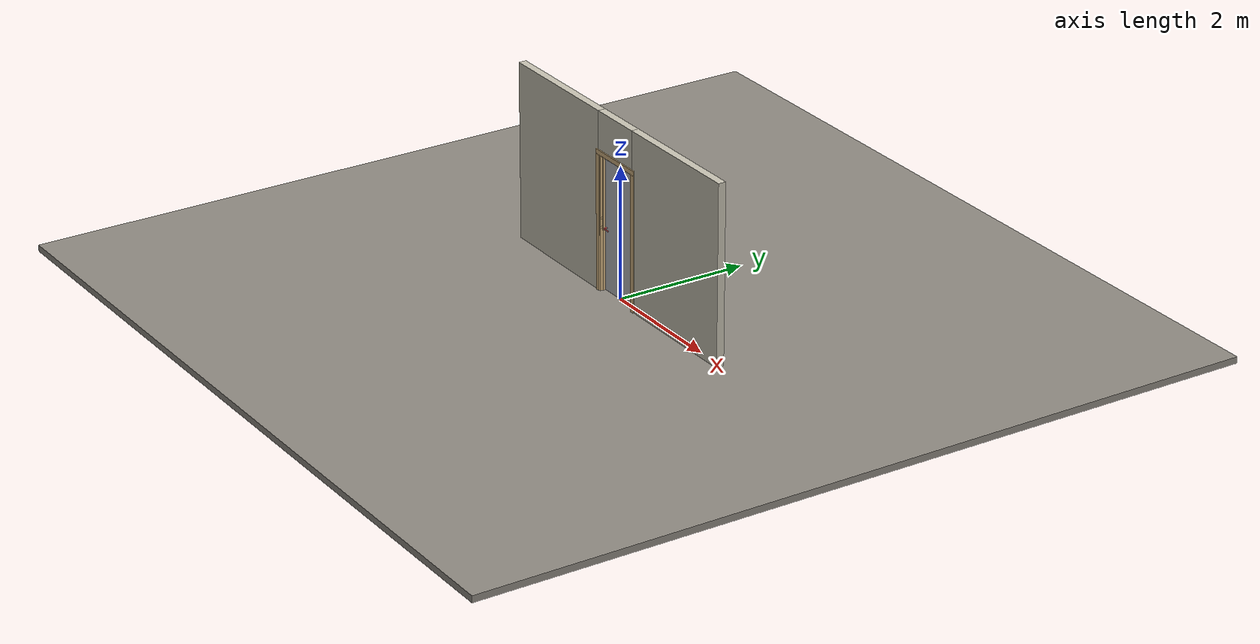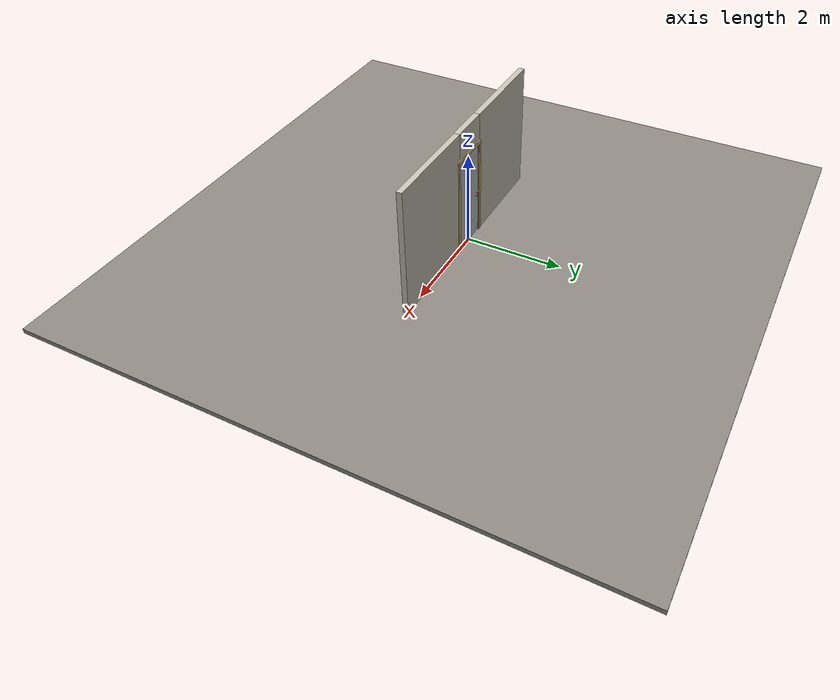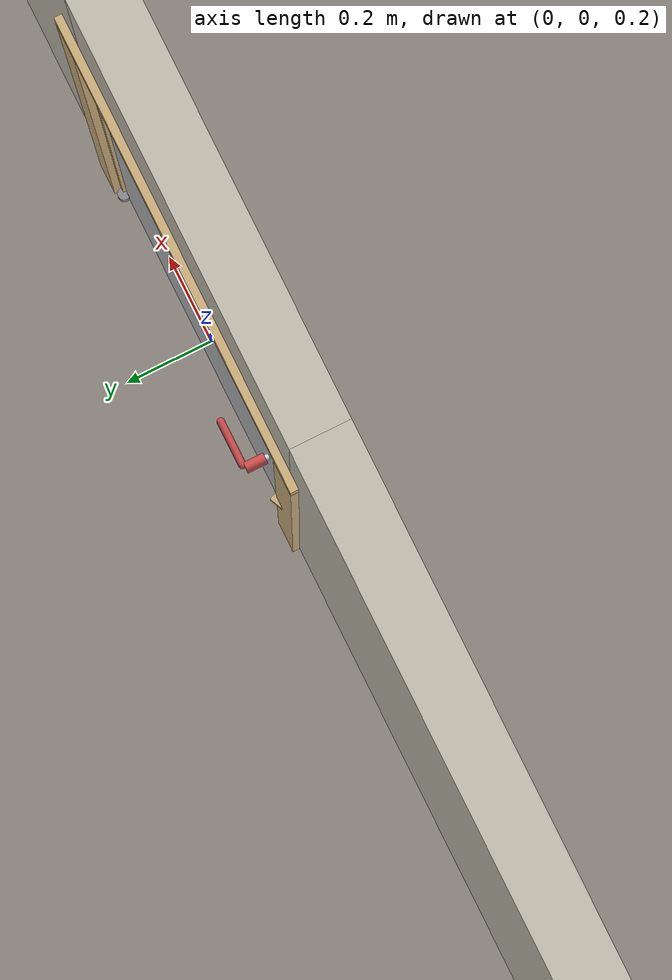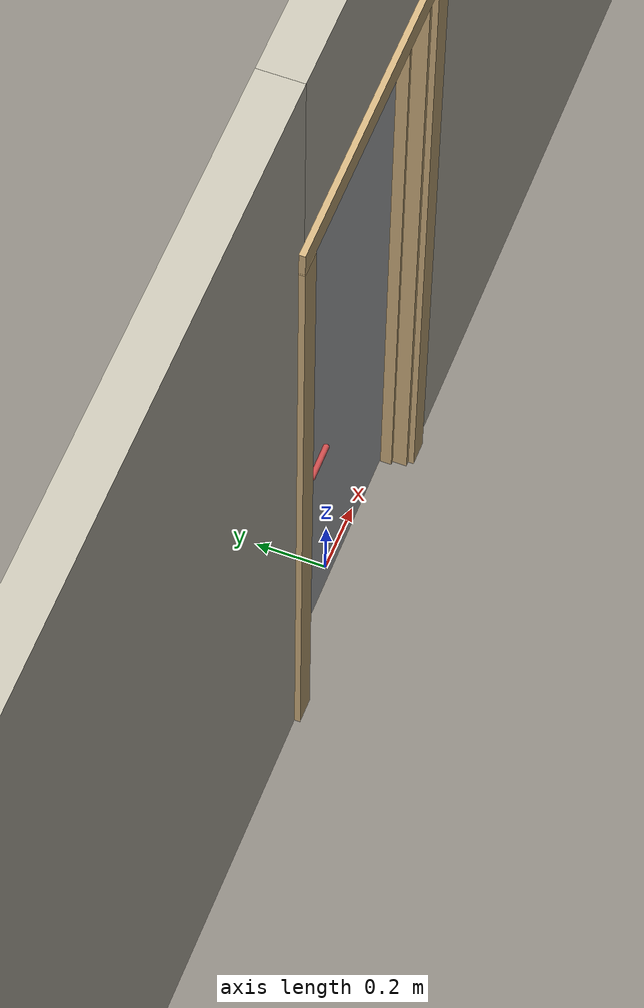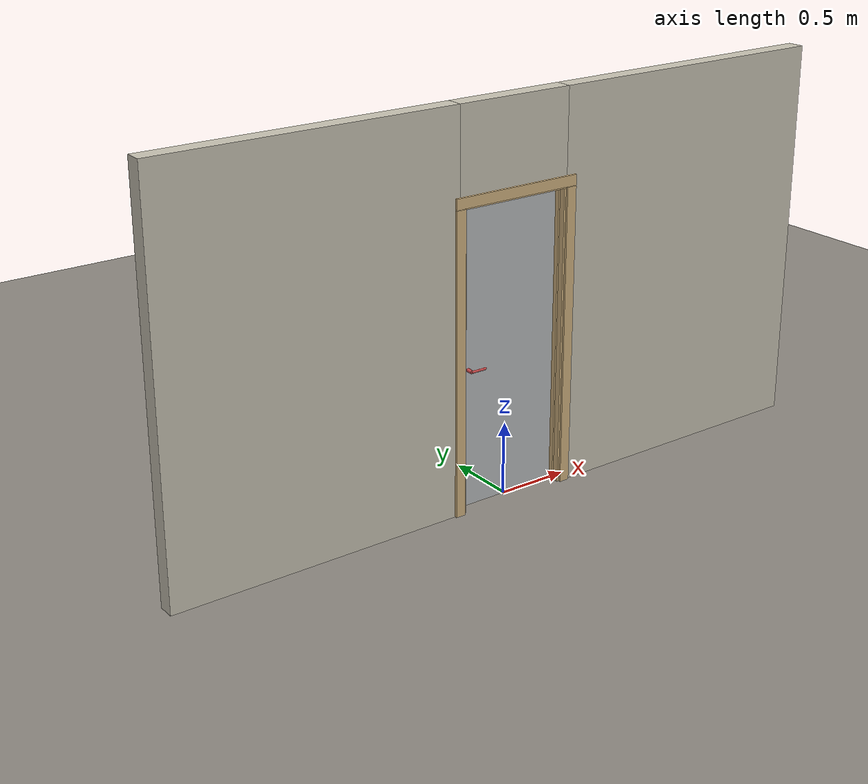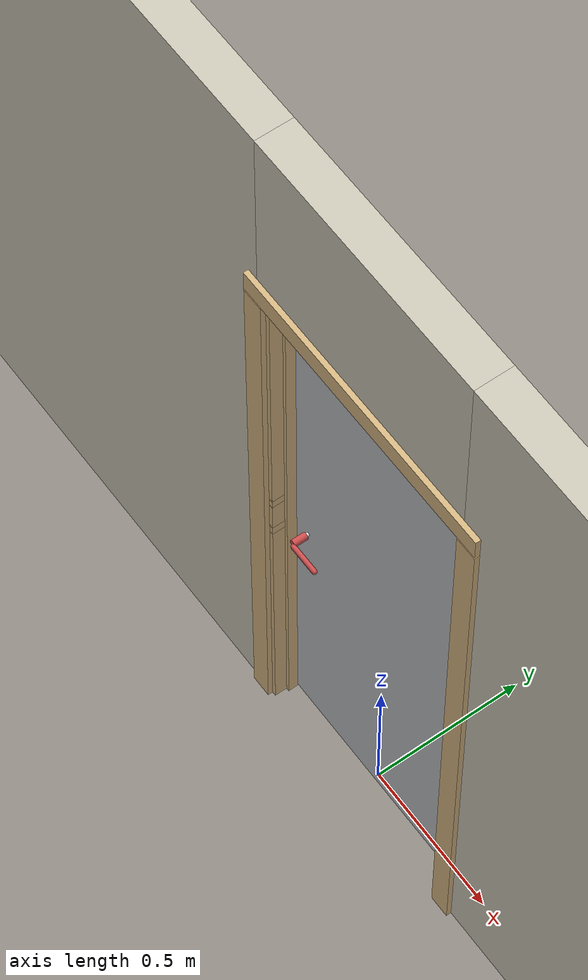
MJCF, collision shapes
<?xml version="1.0" ?>
<mujoco model="db0248_swing_single_full">
  <compiler angle="radian" meshdir="../../hardware" texturedir="../../textures" autolimits="true" inertiafromgeom="false"/>
  <option timestep="0.002" integrator="implicitfast" cone="elliptic" impratio="10" noslip_iterations="3">
    <flag multiccd="enable"/>
  </option>
  <size memory="16M"/>
  <default>
    <geom condim="4" solref="0.005 1" solimp="0.95 0.99 0.001"/>
    <joint solreflimit="0.005 1" solimplimit="0.95 0.99 0.001"/>
    <tendon solreflimit="0.005 1"/>
    <equality solref="0.002 1"/>
  </default>
  <visual>
    <headlight ambient="0.4 0.4 0.4" diffuse="0.7 0.7 0.7" specular="0.2 0.2 0.2"/>
    <quality shadowsize="4096"/>
    <map znear="0.01" zfar="60"/>
  </visual>
  <asset>
    <mesh name="hinge_c20a5829de" file="hinge_c20a5829de.obj"/>
    <mesh name="hinge_jamb_20499e6581" file="hinge_jamb_20499e6581.obj"/>
    <mesh name="lever_748f08efca" file="lever_748f08efca.obj"/>
    <material name="mat_floor" rgba="0.55 0.53 0.5 1" specular="0.2" shininess="0.15" reflectance="0"/>
    <material name="mat_wall" rgba="0.78 0.76 0.7 1" specular="0.2" shininess="0.1" reflectance="0"/>
    <material name="mat_hinge" rgba="0.55 0.56 0.58 1" specular="0.8" shininess="0.55" reflectance="0.4"/>
    <material name="mat_leaf" rgba="0.72 0.73 0.74 1" specular="0.2" shininess="0.33" reflectance="0"/>
    <material name="mat_op_chrome" rgba="0.9 0.9 0.92 1" specular="0.8" shininess="0.9" reflectance="0.4"/>
    <material name="mat_trim" rgba="0.85 0.66 0.3 1" specular="0.8" shininess="0.75" reflectance="0.4"/>
    <material name="mat_bolt" rgba="0.85 0.66 0.3 1" specular="0.8" shininess="0.75" reflectance="0.4"/>
    <material name="mat_deadbolt" rgba="0.85 0.66 0.3 1" specular="0.8" shininess="0.75" reflectance="0.4"/>
    <material name="mat_frame" rgba="0.82 0.7 0.5 1" specular="0.2" shininess="0.45" reflectance="0"/>
    <texture name="skybox" type="skybox" builtin="gradient" rgb1="0.6 0.7 0.85" rgb2="0.9 0.92 0.95" width="256" height="256"/>
  </asset>
  <worldbody>
    <light name="sun" pos="1.5 -2.5 4" dir="-0.3 0.5 -0.8" directional="true" diffuse="0.8 0.8 0.8" specular="0.3 0.3 0.3" castshadow="true"/>
    <light name="fill" pos="-1.5 2.5 3" dir="0.3 -0.5 -0.7" directional="true" diffuse="0.35 0.35 0.4" castshadow="false"/>
    <camera name="robot_view" pos="0 -2.575187 1.734312" xyaxes="1 0 0 0 0.26963 0.962964" fovy="52"/>
    <camera name="far_view" pos="0 2.509187 1.734312" xyaxes="-1 0 0 0 -0.26963 0.962964" fovy="52"/>
    <camera name="iso" pos="-1.932062 -2.168438 2.141063" xyaxes="0.741536 -0.670913 0 0.242917 0.268487 0.932151" fovy="46"/>
    <camera name="detail_handle" pos="-0.0509 -0.8725 1.245" xyaxes="0.97561 0.219512 0 -0.070934 0.315262 0.94635" fovy="38"/>
    <geom name="floor" type="box" size="6 6 0.05" pos="0 0 -0.05" material="mat_floor" group="0" contype="1" conaffinity="1" friction="0.8 0.005 0.0001" density="2400"/>
    <geom name="wall_left" type="box" size="1.03325 0.0575 1.35" pos="-1.46675 -0.033 1.35" material="mat_wall" group="0" contype="1" conaffinity="1" friction="0.6 0.005 0.0001" density="800"/>
    <geom name="wall_right" type="box" size="1.04825 0.0575 1.35" pos="1.45175 -0.033 1.35" material="mat_wall" group="0" contype="1" conaffinity="1" friction="0.6 0.005 0.0001" density="800"/>
    <geom name="wall_header" type="box" size="0.4185 0.0575 0.303" pos="-0.015 -0.033 2.397" material="mat_wall" group="0" contype="1" conaffinity="1" friction="0.6 0.005 0.0001" density="800"/>
    <geom name="hinge_0_jamb" type="mesh" mesh="hinge_jamb_20499e6581" pos="0.3815 0.0245 0.259" quat="0 0 0 1" material="mat_hinge" group="1" contype="0" conaffinity="0" density="7850"/>
    <geom name="hinge_1_jamb" type="mesh" mesh="hinge_jamb_20499e6581" pos="0.3815 0.0245 1.8506" quat="0 0 0 1" material="mat_hinge" group="1" contype="0" conaffinity="0" density="7850"/>
    <geom name="leaf_deadbolt_strike_b" type="box" size="0.0155 0.003 0.0005" pos="-0.384 0 1.0865" quat="0.5 0.5 0.5 0.5" material="mat_deadbolt" group="1" contype="0" conaffinity="0" density="7800"/>
    <geom name="leaf_deadbolt_strike_l" type="box" size="0.003 0.0155 0.0005" pos="-0.384 -0.0125 1.105" quat="0.5 0.5 0.5 0.5" material="mat_deadbolt" group="1" contype="0" conaffinity="0" density="7800"/>
    <geom name="leaf_deadbolt_strike_t" type="box" size="0.0155 0.003 0.0005" pos="-0.384 0 1.1235" quat="0.5 0.5 0.5 0.5" material="mat_deadbolt" group="1" contype="0" conaffinity="0" density="7800"/>
    <geom name="leaf_deadbolt_strike_r" type="box" size="0.003 0.0155 0.0005" pos="-0.384 0.0125 1.105" quat="0.5 0.5 0.5 0.5" material="mat_deadbolt" group="1" contype="0" conaffinity="0" density="7800"/>
    <geom name="jamb_hinge" type="box" size="0.0095 0.0575 1.0225" pos="0.394 -0.033 1.0225" material="mat_frame" group="0" contype="1" conaffinity="1" friction="0.6 0.005 0.0001" density="400"/>
    <geom name="strike_965_wall_n" type="box" size="0.0245 0.041325 0.0167" pos="-0.409 -0.049175 0.965" material="mat_frame" group="0" contype="1" conaffinity="1" friction="0.6 0.005 0.0001" density="400"/>
    <geom name="strike_965_wall_p" type="box" size="0.0245 0.008 0.0167" pos="-0.409 0.01585 0.965" material="mat_frame" group="0" contype="1" conaffinity="1" friction="0.6 0.005 0.0001" density="400"/>
    <geom name="strike_965_ramp" type="box" size="0.0245 0.01649 0.0167" pos="-0.413636 0.028673 0.965" quat="0.977148 0 0 0.212558" material="mat_frame" group="0" contype="1" conaffinity="1" friction="0.12 0.005 0.0001" density="400"/>
    <geom name="strike_965_back" type="box" size="0.01615 0.00785 0.0167" pos="-0.41735 0 0.965" material="mat_frame" group="0" contype="1" conaffinity="1" friction="0.6 0.005 0.0001" density="400"/>
    <geom name="strike_1105_wall_n" type="box" size="0.0245 0.0405 0.0155" pos="-0.409 -0.05 1.105" material="mat_frame" group="0" contype="1" conaffinity="1" friction="0.6 0.005 0.0001" density="400"/>
    <geom name="strike_1105_wall_p" type="box" size="0.0245 0.0075 0.0155" pos="-0.409 0.017 1.105" material="mat_frame" group="0" contype="1" conaffinity="1" friction="0.6 0.005 0.0001" density="400"/>
    <geom name="strike_1105_back" type="box" size="0.0098 0.0095 0.0155" pos="-0.4237 0 1.105" material="mat_frame" group="0" contype="1" conaffinity="1" friction="0.6 0.005 0.0001" density="400"/>
    <geom name="jamb_strike_0" type="box" size="0.0245 0.0575 0.47415" pos="-0.409 -0.033 0.47415" material="mat_frame" group="0" contype="1" conaffinity="1" friction="0.6 0.005 0.0001" density="400"/>
    <geom name="jamb_strike_1" type="box" size="0.0245 0.0575 0.0539" pos="-0.409 -0.033 1.0356" material="mat_frame" group="0" contype="1" conaffinity="1" friction="0.6 0.005 0.0001" density="400"/>
    <geom name="jamb_strike_2" type="box" size="0.0245 0.0575 0.46225" pos="-0.409 -0.033 1.58275" material="mat_frame" group="0" contype="1" conaffinity="1" friction="0.6 0.005 0.0001" density="400"/>
    <geom name="jamb_head" type="box" size="0.4185 0.0575 0.0095" pos="-0.015 -0.033 2.0545" material="mat_frame" group="0" contype="1" conaffinity="1" friction="0.6 0.005 0.0001" density="400"/>
    <geom name="head_stud" type="box" size="0.4185 0.0575 0.015" pos="-0.015 -0.033 2.079" material="mat_wall" group="0" contype="1" conaffinity="1" friction="0.6 0.005 0.0001" density="500"/>
    <geom name="stop_hinge" type="box" size="0.0055 0.016 1.0225" pos="0.379 -0.034 1.0225" material="mat_frame" group="0" contype="1" conaffinity="1" friction="0.6 0.005 0.0001" density="400"/>
    <geom name="stop_strike" type="box" size="0.0055 0.016 1.0225" pos="-0.379 -0.034 1.0225" material="mat_frame" group="0" contype="1" conaffinity="1" friction="0.6 0.005 0.0001" density="400"/>
    <geom name="stop_head" type="box" size="0.3845 0.016 0.0055" pos="0 -0.034 2.0395" material="mat_frame" group="0" contype="1" conaffinity="1" friction="0.6 0.005 0.0001" density="400"/>
    <geom name="casing_l_n" type="box" size="0.035 0.008 1.032" pos="-0.4335 -0.0985 1.0225" material="mat_frame" group="2" contype="0" conaffinity="0" density="400"/>
    <geom name="casing_r_n" type="box" size="0.035 0.008 1.032" pos="0.4335 -0.0985 1.0225" material="mat_frame" group="2" contype="0" conaffinity="0" density="400"/>
    <geom name="casing_h_n" type="box" size="0.4685 0.008 0.035" pos="0 -0.0985 2.094" material="mat_frame" group="2" contype="0" conaffinity="0" density="400"/>
    <geom name="casing_l_p" type="box" size="0.035 0.008 1.032" pos="-0.4335 0.0325 1.0225" material="mat_frame" group="2" contype="0" conaffinity="0" density="400"/>
    <geom name="casing_r_p" type="box" size="0.035 0.008 1.032" pos="0.4335 0.0325 1.0225" material="mat_frame" group="2" contype="0" conaffinity="0" density="400"/>
    <geom name="casing_h_p" type="box" size="0.4685 0.008 0.035" pos="0 0.0325 2.094" material="mat_frame" group="2" contype="0" conaffinity="0" density="400"/>
    <site name="approach_point" pos="0 -1.5 0" quat="1 0 0 0" size="0.05" rgba="0.2 0.9 0.2 0.5" group="4"/>
    <site name="goal_point" pos="0 1.5 0" quat="1 0 0 0" size="0.05" rgba="0.2 0.9 0.2 0.5" group="4"/>
    <site name="door_plane_center" pos="0 0 1.0225" quat="1 0 0 0" size="0.02" rgba="0.2 0.9 0.2 0.5" group="4"/>
    <body name="leaf_riser" pos="0.3845 0 0">
      <inertial pos="-0.003 0.0245 0.055" mass="0.174012" quat="0 0.707107 0 0.707107" diaginertia="0.000017053 0.00002732 0.00002732"/>
      <joint name="leaf_rise" type="slide" axis="0 0 1" limited="true" range="0 0.0176" damping="1" armature="0.5"/>
      <geom name="leaf_riser_marker" type="cylinder" size="0.014 0.018" pos="-0.003 0.0245 0.055" material="mat_hinge" group="1" contype="0" conaffinity="0" density="7850"/>
      <body name="leaf" pos="0 0 0">
        <inertial pos="-0.372003 0.000562 1.021023" mass="11.727709" quat="0.499362 0.501343 -0.498628 0.500662" diaginertia="0.608308533 4.102984778 4.708670116"/>
        <joint name="leaf_hinge" type="hinge" axis="0 0 -1" pos="-0.003 0.0245 0" limited="true" range="0 1.745329" damping="0.173726" frictionloss="0.243387" armature="0.02"/>
        <geom name="leaf_slab" type="box" size="0.381 0.0175 1.0108" pos="-0.384 0 1.0198" material="mat_leaf" group="0" contype="1" conaffinity="1" friction="0.35 0.005 0.0001" density="1"/>
        <geom name="hinge_0" type="mesh" mesh="hinge_c20a5829de" pos="-0.003 0.0245 0.259" quat="0 0 0 1" material="mat_hinge" group="1" contype="0" conaffinity="0" density="7850"/>
        <geom name="hinge_1" type="mesh" mesh="hinge_c20a5829de" pos="-0.003 0.0245 1.8506" quat="0 0 0 1" material="mat_hinge" group="1" contype="0" conaffinity="0" density="7850"/>
        <geom name="leaf_latch_bolt_faceplate" type="box" size="0.0006 0.01235 0.0267" pos="-0.7644 0 0.965" material="mat_bolt" group="1" contype="0" conaffinity="0" density="8500"/>
        <geom name="leaf_deadbolt_faceplate" type="box" size="0.0006 0.014 0.0245" pos="-0.7644 0 1.105" material="mat_deadbolt" group="1" contype="0" conaffinity="0" density="8500"/>
        <site name="leaf_edge_mid" pos="-0.765 0 1.0108" quat="1 0 0 0" size="0.02" rgba="0.2 0.9 0.2 0.5" group="4"/>
        <body name="leaf_handle" pos="-0.705 0 0.965">
          <inertial pos="0.024417 0 0" mass="0.839807" quat="0.707107 0 0 -0.707107" diaginertia="0.001182467 0.002815434 0.003861215"/>
          <joint name="leaf_handle_hinge" type="hinge" axis="0 1 0" limited="true" range="0 0.87" damping="0.205084" frictionloss="0.04" stiffness="0.9" springref="-0.444444" armature="0.01"/>
          <geom name="leaf_handle_spindle" type="cylinder" size="0.006 0.0255" pos="0 0 0" quat="0.707107 -0.707107 0 0" material="mat_op_chrome" group="1" contype="0" conaffinity="0" density="7850"/>
          <geom name="leaf_handle_lever_n" type="mesh" mesh="lever_748f08efca" pos="0 -0.0175 0" quat="0 0 -0.707107 0.707107" material="mat_op_chrome" group="1" contype="0" conaffinity="0" density="3000"/>
          <geom name="leaf_handle_lever_col_n" type="capsule" size="0.008 0.048" pos="0.056 -0.0725 0" quat="0.707107 0 0.707107 0" material="mat_op_chrome" group="3" contype="1" conaffinity="1" rgba="0.8 0.3 0.3 0.25" friction="0.7 0.01 0.0001" density="3000"/>
          <geom name="leaf_handle_hub_col_n" type="cylinder" size="0.012 0.022" pos="0 -0.0475 0" quat="0.707107 -0.707107 0 0" material="mat_op_chrome" group="3" contype="1" conaffinity="1" rgba="0.8 0.3 0.3 0.25" friction="0.6 0.005 0.0001" density="3000"/>
          <geom name="leaf_handle_lever_p" type="mesh" mesh="lever_748f08efca" pos="0 0.0175 0" quat="0 0 0.707107 0.707107" material="mat_op_chrome" group="1" contype="0" conaffinity="0" density="3000"/>
          <geom name="leaf_handle_lever_col_p" type="capsule" size="0.008 0.048" pos="0.056 0.0725 0" quat="0.707107 0 0.707107 0" material="mat_op_chrome" group="3" contype="1" conaffinity="1" rgba="0.8 0.3 0.3 0.25" friction="0.7 0.01 0.0001" density="3000"/>
          <geom name="leaf_handle_hub_col_p" type="cylinder" size="0.012 0.022" pos="0 0.0475 0" quat="0.707107 -0.707107 0 0" material="mat_op_chrome" group="3" contype="1" conaffinity="1" rgba="0.8 0.3 0.3 0.25" friction="0.6 0.005 0.0001" density="3000"/>
          <site name="leaf_handle_grip_n" pos="0.0896 -0.0725 0" quat="1 0 0 0" size="0.012" rgba="0.2 0.9 0.2 0.5" group="4"/>
          <site name="leaf_handle_grip_p" pos="0.0896 0.0725 0" quat="1 0 0 0" size="0.012" rgba="0.2 0.9 0.2 0.5" group="4"/>
        </body>
        <body name="leaf_latch_bolt" pos="-0.765 0 0.965">
          <inertial pos="0.00865 0 0" mass="0.041419" quat="0.92388 0.382683 0 0" diaginertia="0.000000798 0.000005598 0.000005598"/>
          <joint name="leaf_latch_bolt_slide" type="slide" axis="1 0 0" limited="true" range="0 0.0127" damping="2" frictionloss="0.3" stiffness="300" springref="-0.008333" armature="0.1"/>
          <geom name="leaf_latch_bolt_capsule" type="capsule" size="0.00635 0.015" pos="0.00865 0 0" quat="0.707107 0 -0.707107 0" material="mat_bolt" group="0" contype="1" conaffinity="1" friction="0.2 0.005 0.0001" density="8500"/>
        </body>
        <body name="leaf_deadbolt" pos="-0.765 0 1.105">
          <inertial pos="0.0023 0 0" mass="0.18836" quat="0 0 0.707107 0.707107" diaginertia="0.000013829 0.000052194 0.000057986"/>
          <geom name="leaf_deadbolt_box" type="box" size="0.0277 0.008 0.0125" pos="0.0023 0 0" material="mat_deadbolt" group="0" contype="1" conaffinity="1" friction="0.3 0.005 0.0001" density="8500"/>
        </body>
      </body>
    </body>
  </worldbody>
  <tendon>
    <fixed name="leaf_latch_bolt_coupling" limited="true" range="0 10">
      <joint joint="leaf_latch_bolt_slide" coef="1"/>
      <joint joint="leaf_handle_hinge" coef="-0.016076"/>
    </fixed>
  </tendon>
  <equality>
    <joint name="leaf_rise_couple" joint1="leaf_rise" joint2="leaf_hinge" polycoef="0 0.005093 0 0 0" active="true"/>
  </equality>
  <sensor>
    <jointpos name="leaf_hinge_pos" joint="leaf_hinge"/>
    <jointvel name="leaf_hinge_vel" joint="leaf_hinge"/>
    <jointpos name="leaf_handle_hinge_pos" joint="leaf_handle_hinge"/>
    <jointvel name="leaf_handle_hinge_vel" joint="leaf_handle_hinge"/>
    <jointpos name="leaf_latch_bolt_slide_pos" joint="leaf_latch_bolt_slide"/>
    <jointvel name="leaf_latch_bolt_slide_vel" joint="leaf_latch_bolt_slide"/>
  </sensor>
</mujoco>
